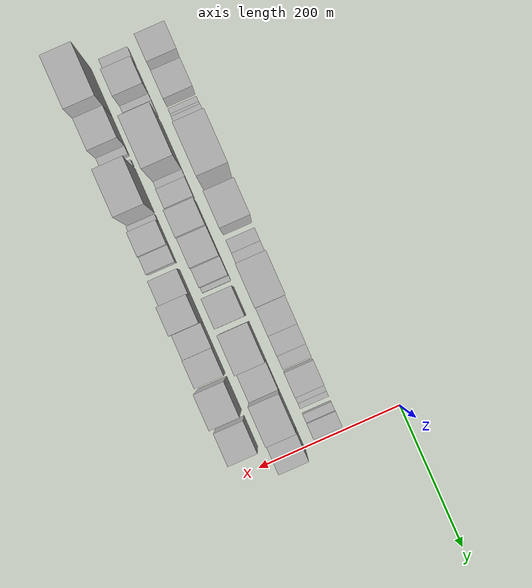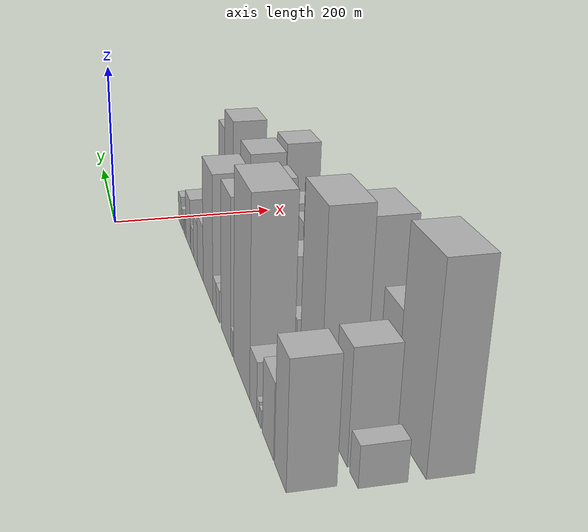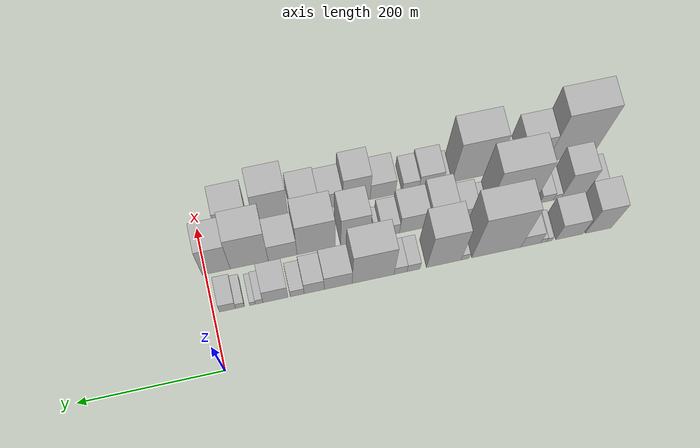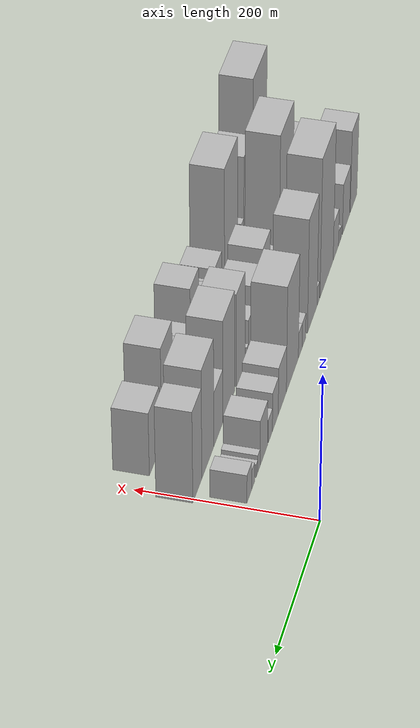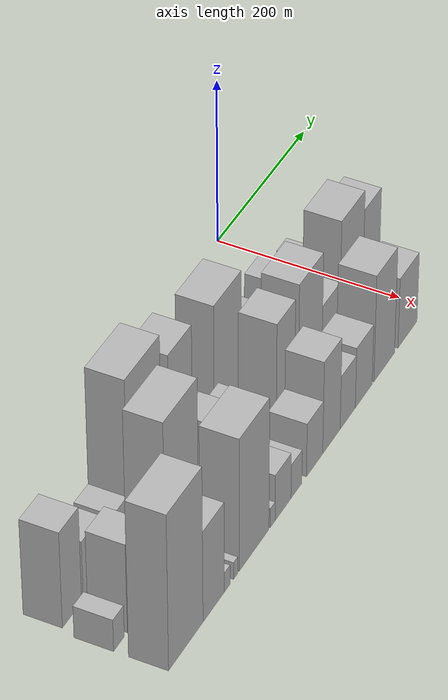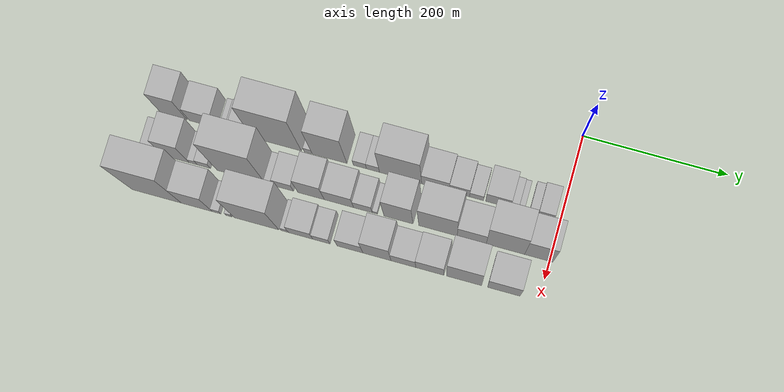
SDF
<sdf version="1.6">
 <world name="default">
  <model name="building_1">
   <static>1</static>
   <pose>100.0000 -535.5505 0 0.000000 0.000000 0.000000</pose>
   <link name="link">
    <pose>0 0 58.50 0 0 0</pose>
    <collision name="collision"><geometry><box><size>40.0000 36.8990 117.0000</size></box></geometry></collision>
    <visual name="visual">
     <cast_shadows>0</cast_shadows>
     <geometry><box><size>40.0000 36.8990 117.0000</size></box></geometry>
     <material>
      <script>
       <uri>model://HANNAS_wall/materials/scripts</uri>
       <uri>model://HANNAS_wall/materials/textures</uri>
       <name>vrc/HANNAS_wall</name>
      </script>
     </material>
    </visual>
   </link>
  </model>
  <model name="building_2">
   <static>1</static>
   <pose>100.0000 -494.7667 0 0.000000 0.000000 0.000000</pose>
   <link name="link">
    <pose>0 0 36.00 0 0 0</pose>
    <collision name="collision"><geometry><box><size>40.0000 38.6686 72.0000</size></box></geometry></collision>
    <visual name="visual">
     <cast_shadows>0</cast_shadows>
     <geometry><box><size>40.0000 38.6686 72.0000</size></box></geometry>
     <material>
      <script>
       <uri>model://HANNAS_wall/materials/scripts</uri>
       <uri>model://HANNAS_wall/materials/textures</uri>
       <name>vrc/HANNAS_wall</name>
      </script>
     </material>
    </visual>
   </link>
  </model>
  <model name="building_3">
   <static>1</static>
   <pose>100.0000 -466.4745 0 0.000000 0.000000 0.000000</pose>
   <link name="link">
    <pose>0 0 9.00 0 0 0</pose>
    <collision name="collision"><geometry><box><size>40.0000 7.9157 18.0000</size></box></geometry></collision>
    <visual name="visual">
     <cast_shadows>0</cast_shadows>
     <geometry><box><size>40.0000 7.9157 18.0000</size></box></geometry>
     <material>
      <script>
       <uri>model://HANNAS_wall/materials/scripts</uri>
       <uri>model://HANNAS_wall/materials/textures</uri>
       <name>vrc/HANNAS_wall</name>
      </script>
     </material>
    </visual>
   </link>
  </model>
  <model name="building_4">
   <static>1</static>
   <pose>100.0000 -458.2818 0 0.000000 0.000000 0.000000</pose>
   <link name="link">
    <pose>0 0 10.50 0 0 0</pose>
    <collision name="collision"><geometry><box><size>40.0000 8.4698 21.0000</size></box></geometry></collision>
    <visual name="visual">
     <cast_shadows>0</cast_shadows>
     <geometry><box><size>40.0000 8.4698 21.0000</size></box></geometry>
     <material>
      <script>
       <uri>model://HANNAS_wall/materials/scripts</uri>
       <uri>model://HANNAS_wall/materials/textures</uri>
       <name>vrc/HANNAS_wall</name>
      </script>
     </material>
    </visual>
   </link>
  </model>
  <model name="building_5">
   <static>1</static>
   <pose>100.0000 -440.0761 0 0.000000 0.000000 0.000000</pose>
   <link name="link">
    <pose>0 0 27.00 0 0 0</pose>
    <collision name="collision"><geometry><box><size>40.0000 27.9417 54.0000</size></box></geometry></collision>
    <visual name="visual">
     <cast_shadows>0</cast_shadows>
     <geometry><box><size>40.0000 27.9417 54.0000</size></box></geometry>
     <material>
      <script>
       <uri>model://HANNAS_wall/materials/scripts</uri>
       <uri>model://HANNAS_wall/materials/textures</uri>
       <name>vrc/HANNAS_wall</name>
      </script>
     </material>
    </visual>
   </link>
  </model>
  <model name="building_6">
   <static>1</static>
   <pose>100.0000 -391.7738 0 0.000000 0.000000 0.000000</pose>
   <link name="link">
    <pose>0 0 97.50 0 0 0</pose>
    <collision name="collision"><geometry><box><size>40.0000 68.6630 195.0000</size></box></geometry></collision>
    <visual name="visual">
     <cast_shadows>0</cast_shadows>
     <geometry><box><size>40.0000 68.6630 195.0000</size></box></geometry>
     <material>
      <script>
       <uri>model://HANNAS_wall/materials/scripts</uri>
       <uri>model://HANNAS_wall/materials/textures</uri>
       <name>vrc/HANNAS_wall</name>
      </script>
     </material>
    </visual>
   </link>
  </model>
  <model name="building_7">
   <static>1</static>
   <pose>100.0000 -347.8952 0 0.000000 0.000000 0.000000</pose>
   <link name="link">
    <pose>0 0 13.50 0 0 0</pose>
    <collision name="collision"><geometry><box><size>40.0000 11.0942 27.0000</size></box></geometry></collision>
    <visual name="visual">
     <cast_shadows>0</cast_shadows>
     <geometry><box><size>40.0000 11.0942 27.0000</size></box></geometry>
     <material>
      <script>
       <uri>model://HANNAS_wall/materials/scripts</uri>
       <uri>model://HANNAS_wall/materials/textures</uri>
       <name>vrc/HANNAS_wall</name>
      </script>
     </material>
    </visual>
   </link>
  </model>
  <model name="building_8">
   <static>1</static>
   <pose>100.0000 -318.2536 0 0.000000 0.000000 0.000000</pose>
   <link name="link">
    <pose>0 0 79.50 0 0 0</pose>
    <collision name="collision"><geometry><box><size>40.0000 48.1891 159.0000</size></box></geometry></collision>
    <visual name="visual">
     <cast_shadows>0</cast_shadows>
     <geometry><box><size>40.0000 48.1891 159.0000</size></box></geometry>
     <material>
      <script>
       <uri>model://HANNAS_wall/materials/scripts</uri>
       <uri>model://HANNAS_wall/materials/textures</uri>
       <name>vrc/HANNAS_wall</name>
      </script>
     </material>
    </visual>
   </link>
  </model>
  <model name="building_9">
   <static>1</static>
   <pose>100.0000 -276.0487 0 0.000000 0.000000 0.000000</pose>
   <link name="link">
    <pose>0 0 18.00 0 0 0</pose>
    <collision name="collision"><geometry><box><size>40.0000 18.2208 36.0000</size></box></geometry></collision>
    <visual name="visual">
     <cast_shadows>0</cast_shadows>
     <geometry><box><size>40.0000 18.2208 36.0000</size></box></geometry>
     <material>
      <script>
       <uri>model://HANNAS_wall/materials/scripts</uri>
       <uri>model://HANNAS_wall/materials/textures</uri>
       <name>vrc/HANNAS_wall</name>
      </script>
     </material>
    </visual>
   </link>
  </model>
  <model name="building_10">
   <static>1</static>
   <pose>100.0000 -257.8880 0 0.000000 0.000000 0.000000</pose>
   <link name="link">
    <pose>0 0 18.00 0 0 0</pose>
    <collision name="collision"><geometry><box><size>40.0000 18.1005 36.0000</size></box></geometry></collision>
    <visual name="visual">
     <cast_shadows>0</cast_shadows>
     <geometry><box><size>40.0000 18.1005 36.0000</size></box></geometry>
     <material>
      <script>
       <uri>model://HANNAS_wall/materials/scripts</uri>
       <uri>model://HANNAS_wall/materials/textures</uri>
       <name>vrc/HANNAS_wall</name>
      </script>
     </material>
    </visual>
   </link>
  </model>
  <model name="building_11">
   <static>1</static>
   <pose>100.0000 -219.7703 0 0.000000 0.000000 0.000000</pose>
   <link name="link">
    <pose>0 0 73.50 0 0 0</pose>
    <collision name="collision"><geometry><box><size>40.0000 58.1349 147.0000</size></box></geometry></collision>
    <visual name="visual">
     <cast_shadows>0</cast_shadows>
     <geometry><box><size>40.0000 58.1349 147.0000</size></box></geometry>
     <material>
      <script>
       <uri>model://HANNAS_wall/materials/scripts</uri>
       <uri>model://HANNAS_wall/materials/textures</uri>
       <name>vrc/HANNAS_wall</name>
      </script>
     </material>
    </visual>
   </link>
  </model>
  <model name="building_12">
   <static>1</static>
   <pose>100.0000 -171.3917 0 0.000000 0.000000 0.000000</pose>
   <link name="link">
    <pose>0 0 33.00 0 0 0</pose>
    <collision name="collision"><geometry><box><size>40.0000 38.6224 66.0000</size></box></geometry></collision>
    <visual name="visual">
     <cast_shadows>0</cast_shadows>
     <geometry><box><size>40.0000 38.6224 66.0000</size></box></geometry>
     <material>
      <script>
       <uri>model://HANNAS_wall/materials/scripts</uri>
       <uri>model://HANNAS_wall/materials/textures</uri>
       <name>vrc/HANNAS_wall</name>
      </script>
     </material>
    </visual>
   </link>
  </model>
  <model name="building_13">
   <static>1</static>
   <pose>100.0000 -138.2417 0 0.000000 0.000000 0.000000</pose>
   <link name="link">
    <pose>0 0 27.00 0 0 0</pose>
    <collision name="collision"><geometry><box><size>40.0000 27.6775 54.0000</size></box></geometry></collision>
    <visual name="visual">
     <cast_shadows>0</cast_shadows>
     <geometry><box><size>40.0000 27.6775 54.0000</size></box></geometry>
     <material>
      <script>
       <uri>model://HANNAS_wall/materials/scripts</uri>
       <uri>model://HANNAS_wall/materials/textures</uri>
       <name>vrc/HANNAS_wall</name>
      </script>
     </material>
    </visual>
   </link>
  </model>
  <model name="building_14">
   <static>1</static>
   <pose>100.0000 -114.8564 0 0.000000 0.000000 0.000000</pose>
   <link name="link">
    <pose>0 0 16.50 0 0 0</pose>
    <collision name="collision"><geometry><box><size>40.0000 19.0930 33.0000</size></box></geometry></collision>
    <visual name="visual">
     <cast_shadows>0</cast_shadows>
     <geometry><box><size>40.0000 19.0930 33.0000</size></box></geometry>
     <material>
      <script>
       <uri>model://HANNAS_wall/materials/scripts</uri>
       <uri>model://HANNAS_wall/materials/textures</uri>
       <name>vrc/HANNAS_wall</name>
      </script>
     </material>
    </visual>
   </link>
  </model>
  <model name="building_15">
   <static>1</static>
   <pose>100.0000 -85.0849 0 0.000000 0.000000 0.000000</pose>
   <link name="link">
    <pose>0 0 31.50 0 0 0</pose>
    <collision name="collision"><geometry><box><size>40.0000 34.4501 63.0000</size></box></geometry></collision>
    <visual name="visual">
     <cast_shadows>0</cast_shadows>
     <geometry><box><size>40.0000 34.4501 63.0000</size></box></geometry>
     <material>
      <script>
       <uri>model://HANNAS_wall/materials/scripts</uri>
       <uri>model://HANNAS_wall/materials/textures</uri>
       <name>vrc/HANNAS_wall</name>
      </script>
     </material>
    </visual>
   </link>
  </model>
  <model name="building_16">
   <static>1</static>
   <pose>100.0000 -62.6137 0 0.000000 0.000000 0.000000</pose>
   <link name="link">
    <pose>0 0 12.00 0 0 0</pose>
    <collision name="collision"><geometry><box><size>40.0000 10.4922 24.0000</size></box></geometry></collision>
    <visual name="visual">
     <cast_shadows>0</cast_shadows>
     <geometry><box><size>40.0000 10.4922 24.0000</size></box></geometry>
     <material>
      <script>
       <uri>model://HANNAS_wall/materials/scripts</uri>
       <uri>model://HANNAS_wall/materials/textures</uri>
       <name>vrc/HANNAS_wall</name>
      </script>
     </material>
    </visual>
   </link>
  </model>
  <model name="building_17">
   <static>1</static>
   <pose>100.0000 -53.4701 0 0.000000 0.000000 0.000000</pose>
   <link name="link">
    <pose>0 0 9.00 0 0 0</pose>
    <collision name="collision"><geometry><box><size>40.0000 7.7951 18.0000</size></box></geometry></collision>
    <visual name="visual">
     <cast_shadows>0</cast_shadows>
     <geometry><box><size>40.0000 7.7951 18.0000</size></box></geometry>
     <material>
      <script>
       <uri>model://HANNAS_wall/materials/scripts</uri>
       <uri>model://HANNAS_wall/materials/textures</uri>
       <name>vrc/HANNAS_wall</name>
      </script>
     </material>
    </visual>
   </link>
  </model>
  <model name="building_18">
   <static>1</static>
   <pose>100.0000 -36.5034 0 0.000000 0.000000 0.000000</pose>
   <link name="link">
    <pose>0 0 13.50 0 0 0</pose>
    <collision name="collision"><geometry><box><size>40.0000 12.1384 27.0000</size></box></geometry></collision>
    <visual name="visual">
     <cast_shadows>0</cast_shadows>
     <geometry><box><size>40.0000 12.1384 27.0000</size></box></geometry>
     <material>
      <script>
       <uri>model://HANNAS_wall/materials/scripts</uri>
       <uri>model://HANNAS_wall/materials/textures</uri>
       <name>vrc/HANNAS_wall</name>
      </script>
     </material>
    </visual>
   </link>
  </model>
  <model name="building_19">
   <static>1</static>
   <pose>100.0000 -19.3867 0 0.000000 0.000000 0.000000</pose>
   <link name="link">
    <pose>0 0 19.50 0 0 0</pose>
    <collision name="collision"><geometry><box><size>40.0000 22.0950 39.0000</size></box></geometry></collision>
    <visual name="visual">
     <cast_shadows>0</cast_shadows>
     <geometry><box><size>40.0000 22.0950 39.0000</size></box></geometry>
     <material>
      <script>
       <uri>model://HANNAS_wall/materials/scripts</uri>
       <uri>model://HANNAS_wall/materials/textures</uri>
       <name>vrc/HANNAS_wall</name>
      </script>
     </material>
    </visual>
   </link>
  </model>
  <model name="building_37">
   <static>1</static>
   <pose>155.0000 -549.6959 0 0.000000 0.000000 0.000000</pose>
   <link name="link">
    <pose>0 0 19.50 0 0 0</pose>
    <collision name="collision"><geometry><box><size>40.0000 20.6082 39.0000</size></box></geometry></collision>
    <visual name="visual">
     <cast_shadows>0</cast_shadows>
     <geometry><box><size>40.0000 20.6082 39.0000</size></box></geometry>
     <material>
      <script>
       <uri>model://HANNAS_wall/materials/scripts</uri>
       <uri>model://HANNAS_wall/materials/textures</uri>
       <name>vrc/HANNAS_wall</name>
      </script>
     </material>
    </visual>
   </link>
  </model>
  <model name="building_38">
   <static>1</static>
   <pose>155.0000 -515.3223 0 0.000000 0.000000 0.000000</pose>
   <link name="link">
    <pose>0 0 54.00 0 0 0</pose>
    <collision name="collision"><geometry><box><size>40.0000 36.1389 108.0000</size></box></geometry></collision>
    <visual name="visual">
     <cast_shadows>0</cast_shadows>
     <geometry><box><size>40.0000 36.1389 108.0000</size></box></geometry>
     <material>
      <script>
       <uri>model://HANNAS_wall/materials/scripts</uri>
       <uri>model://HANNAS_wall/materials/textures</uri>
       <name>vrc/HANNAS_wall</name>
      </script>
     </material>
    </visual>
   </link>
  </model>
  <model name="building_39">
   <static>1</static>
   <pose>155.0000 -491.7513 0 0.000000 0.000000 0.000000</pose>
   <link name="link">
    <pose>0 0 12.00 0 0 0</pose>
    <collision name="collision"><geometry><box><size>40.0000 11.0030 24.0000</size></box></geometry></collision>
    <visual name="visual">
     <cast_shadows>0</cast_shadows>
     <geometry><box><size>40.0000 11.0030 24.0000</size></box></geometry>
     <material>
      <script>
       <uri>model://HANNAS_wall/materials/scripts</uri>
       <uri>model://HANNAS_wall/materials/textures</uri>
       <name>vrc/HANNAS_wall</name>
      </script>
     </material>
    </visual>
   </link>
  </model>
  <model name="building_40">
   <static>1</static>
   <pose>155.0000 -476.9109 0 0.000000 0.000000 0.000000</pose>
   <link name="link">
    <pose>0 0 16.50 0 0 0</pose>
    <collision name="collision"><geometry><box><size>40.0000 18.6778 33.0000</size></box></geometry></collision>
    <visual name="visual">
     <cast_shadows>0</cast_shadows>
     <geometry><box><size>40.0000 18.6778 33.0000</size></box></geometry>
     <material>
      <script>
       <uri>model://HANNAS_wall/materials/scripts</uri>
       <uri>model://HANNAS_wall/materials/textures</uri>
       <name>vrc/HANNAS_wall</name>
      </script>
     </material>
    </visual>
   </link>
  </model>
  <model name="building_41">
   <static>1</static>
   <pose>155.0000 -424.9604 0 0.000000 0.000000 0.000000</pose>
   <link name="link">
    <pose>0 0 96.00 0 0 0</pose>
    <collision name="collision"><geometry><box><size>40.0000 67.2231 192.0000</size></box></geometry></collision>
    <visual name="visual">
     <cast_shadows>0</cast_shadows>
     <geometry><box><size>40.0000 67.2231 192.0000</size></box></geometry>
     <material>
      <script>
       <uri>model://HANNAS_wall/materials/scripts</uri>
       <uri>model://HANNAS_wall/materials/textures</uri>
       <name>vrc/HANNAS_wall</name>
      </script>
     </material>
    </visual>
   </link>
  </model>
  <model name="building_42">
   <static>1</static>
   <pose>155.0000 -385.1806 0 0.000000 0.000000 0.000000</pose>
   <link name="link">
    <pose>0 0 13.50 0 0 0</pose>
    <collision name="collision"><geometry><box><size>40.0000 12.3365 27.0000</size></box></geometry></collision>
    <visual name="visual">
     <cast_shadows>0</cast_shadows>
     <geometry><box><size>40.0000 12.3365 27.0000</size></box></geometry>
     <material>
      <script>
       <uri>model://HANNAS_wall/materials/scripts</uri>
       <uri>model://HANNAS_wall/materials/textures</uri>
       <name>vrc/HANNAS_wall</name>
      </script>
     </material>
    </visual>
   </link>
  </model>
  <model name="building_43">
   <static>1</static>
   <pose>155.0000 -365.5989 0 0.000000 0.000000 0.000000</pose>
   <link name="link">
    <pose>0 0 24.00 0 0 0</pose>
    <collision name="collision"><geometry><box><size>40.0000 26.8269 48.0000</size></box></geometry></collision>
    <visual name="visual">
     <cast_shadows>0</cast_shadows>
     <geometry><box><size>40.0000 26.8269 48.0000</size></box></geometry>
     <material>
      <script>
       <uri>model://HANNAS_wall/materials/scripts</uri>
       <uri>model://HANNAS_wall/materials/textures</uri>
       <name>vrc/HANNAS_wall</name>
      </script>
     </material>
    </visual>
   </link>
  </model>
  <model name="building_44">
   <static>1</static>
   <pose>155.0000 -327.8745 0 0.000000 0.000000 0.000000</pose>
   <link name="link">
    <pose>0 0 48.00 0 0 0</pose>
    <collision name="collision"><geometry><box><size>40.0000 36.6219 96.0000</size></box></geometry></collision>
    <visual name="visual">
     <cast_shadows>0</cast_shadows>
     <geometry><box><size>40.0000 36.6219 96.0000</size></box></geometry>
     <material>
      <script>
       <uri>model://HANNAS_wall/materials/scripts</uri>
       <uri>model://HANNAS_wall/materials/textures</uri>
       <name>vrc/HANNAS_wall</name>
      </script>
     </material>
    </visual>
   </link>
  </model>
  <model name="building_45">
   <static>1</static>
   <pose>155.0000 -289.3366 0 0.000000 0.000000 0.000000</pose>
   <link name="link">
    <pose>0 0 37.50 0 0 0</pose>
    <collision name="collision"><geometry><box><size>40.0000 40.4539 75.0000</size></box></geometry></collision>
    <visual name="visual">
     <cast_shadows>0</cast_shadows>
     <geometry><box><size>40.0000 40.4539 75.0000</size></box></geometry>
     <material>
      <script>
       <uri>model://HANNAS_wall/materials/scripts</uri>
       <uri>model://HANNAS_wall/materials/textures</uri>
       <name>vrc/HANNAS_wall</name>
      </script>
     </material>
    </visual>
   </link>
  </model>
  <model name="building_46">
   <static>1</static>
   <pose>155.0000 -256.2113 0 0.000000 0.000000 0.000000</pose>
   <link name="link">
    <pose>0 0 24.00 0 0 0</pose>
    <collision name="collision"><geometry><box><size>40.0000 25.7966 48.0000</size></box></geometry></collision>
    <visual name="visual">
     <cast_shadows>0</cast_shadows>
     <geometry><box><size>40.0000 25.7966 48.0000</size></box></geometry>
     <material>
      <script>
       <uri>model://HANNAS_wall/materials/scripts</uri>
       <uri>model://HANNAS_wall/materials/textures</uri>
       <name>vrc/HANNAS_wall</name>
      </script>
     </material>
    </visual>
   </link>
  </model>
  <model name="building_47">
   <static>1</static>
   <pose>155.0000 -239.7607 0 0.000000 0.000000 0.000000</pose>
   <link name="link">
    <pose>0 0 7.50 0 0 0</pose>
    <collision name="collision"><geometry><box><size>40.0000 7.1046 15.0000</size></box></geometry></collision>
    <visual name="visual">
     <cast_shadows>0</cast_shadows>
     <geometry><box><size>40.0000 7.1046 15.0000</size></box></geometry>
     <material>
      <script>
       <uri>model://HANNAS_wall/materials/scripts</uri>
       <uri>model://HANNAS_wall/materials/textures</uri>
       <name>vrc/HANNAS_wall</name>
      </script>
     </material>
    </visual>
   </link>
  </model>
  <model name="building_48">
   <static>1</static>
   <pose>155.0000 -207.1882 0 0.000000 0.000000 0.000000</pose>
   <link name="link">
    <pose>0 0 64.50 0 0 0</pose>
    <collision name="collision"><geometry><box><size>40.0000 40.0405 129.0000</size></box></geometry></collision>
    <visual name="visual">
     <cast_shadows>0</cast_shadows>
     <geometry><box><size>40.0000 40.0405 129.0000</size></box></geometry>
     <material>
      <script>
       <uri>model://HANNAS_wall/materials/scripts</uri>
       <uri>model://HANNAS_wall/materials/textures</uri>
       <name>vrc/HANNAS_wall</name>
      </script>
     </material>
    </visual>
   </link>
  </model>
  <model name="building_49">
   <static>1</static>
   <pose>155.0000 -152.7702 0 0.000000 0.000000 0.000000</pose>
   <link name="link">
    <pose>0 0 70.50 0 0 0</pose>
    <collision name="collision"><geometry><box><size>40.0000 52.7954 141.0000</size></box></geometry></collision>
    <visual name="visual">
     <cast_shadows>0</cast_shadows>
     <geometry><box><size>40.0000 52.7954 141.0000</size></box></geometry>
     <material>
      <script>
       <uri>model://HANNAS_wall/materials/scripts</uri>
       <uri>model://HANNAS_wall/materials/textures</uri>
       <name>vrc/HANNAS_wall</name>
      </script>
     </material>
    </visual>
   </link>
  </model>
  <model name="building_50">
   <static>1</static>
   <pose>155.0000 -106.4207 0 0.000000 0.000000 0.000000</pose>
   <link name="link">
    <pose>0 0 37.50 0 0 0</pose>
    <collision name="collision"><geometry><box><size>40.0000 39.9036 75.0000</size></box></geometry></collision>
    <visual name="visual">
     <cast_shadows>0</cast_shadows>
     <geometry><box><size>40.0000 39.9036 75.0000</size></box></geometry>
     <material>
      <script>
       <uri>model://HANNAS_wall/materials/scripts</uri>
       <uri>model://HANNAS_wall/materials/textures</uri>
       <name>vrc/HANNAS_wall</name>
      </script>
     </material>
    </visual>
   </link>
  </model>
  <model name="building_51">
   <static>1</static>
   <pose>155.0000 -60.1833 0 0.000000 0.000000 0.000000</pose>
   <link name="link">
    <pose>0 0 75.00 0 0 0</pose>
    <collision name="collision"><geometry><box><size>40.0000 52.5711 150.0000</size></box></geometry></collision>
    <visual name="visual">
     <cast_shadows>0</cast_shadows>
     <geometry><box><size>40.0000 52.5711 150.0000</size></box></geometry>
     <material>
      <script>
       <uri>model://HANNAS_wall/materials/scripts</uri>
       <uri>model://HANNAS_wall/materials/textures</uri>
       <name>vrc/HANNAS_wall</name>
      </script>
     </material>
    </visual>
   </link>
  </model>
  <model name="building_52">
   <static>1</static>
   <pose>155.0000 -14.5648 0 0.000000 0.000000 0.000000</pose>
   <link name="link">
    <pose>0 0 63.00 0 0 0</pose>
    <collision name="collision"><geometry><box><size>40.0000 38.6658 126.0000</size></box></geometry></collision>
    <visual name="visual">
     <cast_shadows>0</cast_shadows>
     <geometry><box><size>40.0000 38.6658 126.0000</size></box></geometry>
     <material>
      <script>
       <uri>model://HANNAS_wall/materials/scripts</uri>
       <uri>model://HANNAS_wall/materials/textures</uri>
       <name>vrc/HANNAS_wall</name>
      </script>
     </material>
    </visual>
   </link>
  </model>
  <model name="building_68">
   <static>1</static>
   <pose>210.0000 -525.7939 0 0.000000 0.000000 0.000000</pose>
   <link name="link">
    <pose>0 0 94.50 0 0 0</pose>
    <collision name="collision"><geometry><box><size>40.0000 68.4122 189.0000</size></box></geometry></collision>
    <visual name="visual">
     <cast_shadows>0</cast_shadows>
     <geometry><box><size>40.0000 68.4122 189.0000</size></box></geometry>
     <material>
      <script>
       <uri>model://HANNAS_wall/materials/scripts</uri>
       <uri>model://HANNAS_wall/materials/textures</uri>
       <name>vrc/HANNAS_wall</name>
      </script>
     </material>
    </visual>
   </link>
  </model>
  <model name="building_69">
   <static>1</static>
   <pose>210.0000 -470.1183 0 0.000000 0.000000 0.000000</pose>
   <link name="link">
    <pose>0 0 55.50 0 0 0</pose>
    <collision name="collision"><geometry><box><size>40.0000 42.9390 111.0000</size></box></geometry></collision>
    <visual name="visual">
     <cast_shadows>0</cast_shadows>
     <geometry><box><size>40.0000 42.9390 111.0000</size></box></geometry>
     <material>
      <script>
       <uri>model://HANNAS_wall/materials/scripts</uri>
       <uri>model://HANNAS_wall/materials/textures</uri>
       <name>vrc/HANNAS_wall</name>
      </script>
     </material>
    </visual>
   </link>
  </model>
  <model name="building_70">
   <static>1</static>
   <pose>210.0000 -442.7372 0 0.000000 0.000000 0.000000</pose>
   <link name="link">
    <pose>0 0 12.00 0 0 0</pose>
    <collision name="collision"><geometry><box><size>40.0000 11.8231 24.0000</size></box></geometry></collision>
    <visual name="visual">
     <cast_shadows>0</cast_shadows>
     <geometry><box><size>40.0000 11.8231 24.0000</size></box></geometry>
     <material>
      <script>
       <uri>model://HANNAS_wall/materials/scripts</uri>
       <uri>model://HANNAS_wall/materials/textures</uri>
       <name>vrc/HANNAS_wall</name>
      </script>
     </material>
    </visual>
   </link>
  </model>
  <model name="building_71">
   <static>1</static>
   <pose>210.0000 -425.5151 0 0.000000 0.000000 0.000000</pose>
   <link name="link">
    <pose>0 0 10.50 0 0 0</pose>
    <collision name="collision"><geometry><box><size>40.0000 8.6212 21.0000</size></box></geometry></collision>
    <visual name="visual">
     <cast_shadows>0</cast_shadows>
     <geometry><box><size>40.0000 8.6212 21.0000</size></box></geometry>
     <material>
      <script>
       <uri>model://HANNAS_wall/materials/scripts</uri>
       <uri>model://HANNAS_wall/materials/textures</uri>
       <name>vrc/HANNAS_wall</name>
      </script>
     </material>
    </visual>
   </link>
  </model>
  <model name="building_72">
   <static>1</static>
   <pose>210.0000 -387.2562 0 0.000000 0.000000 0.000000</pose>
   <link name="link">
    <pose>0 0 81.00 0 0 0</pose>
    <collision name="collision"><geometry><box><size>40.0000 61.8966 162.0000</size></box></geometry></collision>
    <visual name="visual">
     <cast_shadows>0</cast_shadows>
     <geometry><box><size>40.0000 61.8966 162.0000</size></box></geometry>
     <material>
      <script>
       <uri>model://HANNAS_wall/materials/scripts</uri>
       <uri>model://HANNAS_wall/materials/textures</uri>
       <name>vrc/HANNAS_wall</name>
      </script>
     </material>
    </visual>
   </link>
  </model>
  <model name="building_73">
   <static>1</static>
   <pose>210.0000 -348.2976 0 0.000000 0.000000 0.000000</pose>
   <link name="link">
    <pose>0 0 12.00 0 0 0</pose>
    <collision name="collision"><geometry><box><size>40.0000 10.0205 24.0000</size></box></geometry></collision>
    <visual name="visual">
     <cast_shadows>0</cast_shadows>
     <geometry><box><size>40.0000 10.0205 24.0000</size></box></geometry>
     <material>
      <script>
       <uri>model://HANNAS_wall/materials/scripts</uri>
       <uri>model://HANNAS_wall/materials/textures</uri>
       <name>vrc/HANNAS_wall</name>
      </script>
     </material>
    </visual>
   </link>
  </model>
  <model name="building_74">
   <static>1</static>
   <pose>210.0000 -326.3719 0 0.000000 0.000000 0.000000</pose>
   <link name="link">
    <pose>0 0 28.50 0 0 0</pose>
    <collision name="collision"><geometry><box><size>40.0000 33.8310 57.0000</size></box></geometry></collision>
    <visual name="visual">
     <cast_shadows>0</cast_shadows>
     <geometry><box><size>40.0000 33.8310 57.0000</size></box></geometry>
     <material>
      <script>
       <uri>model://HANNAS_wall/materials/scripts</uri>
       <uri>model://HANNAS_wall/materials/textures</uri>
       <name>vrc/HANNAS_wall</name>
      </script>
     </material>
    </visual>
   </link>
  </model>
  <model name="building_75">
   <static>1</static>
   <pose>210.0000 -297.6768 0 0.000000 0.000000 0.000000</pose>
   <link name="link">
    <pose>0 0 21.00 0 0 0</pose>
    <collision name="collision"><geometry><box><size>40.0000 23.5592 42.0000</size></box></geometry></collision>
    <visual name="visual">
     <cast_shadows>0</cast_shadows>
     <geometry><box><size>40.0000 23.5592 42.0000</size></box></geometry>
     <material>
      <script>
       <uri>model://HANNAS_wall/materials/scripts</uri>
       <uri>model://HANNAS_wall/materials/textures</uri>
       <name>vrc/HANNAS_wall</name>
      </script>
     </material>
    </visual>
   </link>
  </model>
  <model name="building_76">
   <static>1</static>
   <pose>210.0000 -258.1578 0 0.000000 0.000000 0.000000</pose>
   <link name="link">
    <pose>0 0 33.00 0 0 0</pose>
    <collision name="collision"><geometry><box><size>40.0000 35.4788 66.0000</size></box></geometry></collision>
    <visual name="visual">
     <cast_shadows>0</cast_shadows>
     <geometry><box><size>40.0000 35.4788 66.0000</size></box></geometry>
     <material>
      <script>
       <uri>model://HANNAS_wall/materials/scripts</uri>
       <uri>model://HANNAS_wall/materials/textures</uri>
       <name>vrc/HANNAS_wall</name>
      </script>
     </material>
    </visual>
   </link>
  </model>
  <model name="building_77">
   <static>1</static>
   <pose>210.0000 -221.1615 0 0.000000 0.000000 0.000000</pose>
   <link name="link">
    <pose>0 0 57.00 0 0 0</pose>
    <collision name="collision"><geometry><box><size>40.0000 38.5138 114.0000</size></box></geometry></collision>
    <visual name="visual">
     <cast_shadows>0</cast_shadows>
     <geometry><box><size>40.0000 38.5138 114.0000</size></box></geometry>
     <material>
      <script>
       <uri>model://HANNAS_wall/materials/scripts</uri>
       <uri>model://HANNAS_wall/materials/textures</uri>
       <name>vrc/HANNAS_wall</name>
      </script>
     </material>
    </visual>
   </link>
  </model>
  <model name="building_78">
   <static>1</static>
   <pose>210.0000 -184.8721 0 0.000000 0.000000 0.000000</pose>
   <link name="link">
    <pose>0 0 33.00 0 0 0</pose>
    <collision name="collision"><geometry><box><size>40.0000 34.0649 66.0000</size></box></geometry></collision>
    <visual name="visual">
     <cast_shadows>0</cast_shadows>
     <geometry><box><size>40.0000 34.0649 66.0000</size></box></geometry>
     <material>
      <script>
       <uri>model://HANNAS_wall/materials/scripts</uri>
       <uri>model://HANNAS_wall/materials/textures</uri>
       <name>vrc/HANNAS_wall</name>
      </script>
     </material>
    </visual>
   </link>
  </model>
  <model name="building_79">
   <static>1</static>
   <pose>210.0000 -148.7007 0 0.000000 0.000000 0.000000</pose>
   <link name="link">
    <pose>0 0 37.50 0 0 0</pose>
    <collision name="collision"><geometry><box><size>40.0000 38.2779 75.0000</size></box></geometry></collision>
    <visual name="visual">
     <cast_shadows>0</cast_shadows>
     <geometry><box><size>40.0000 38.2779 75.0000</size></box></geometry>
     <material>
      <script>
       <uri>model://HANNAS_wall/materials/scripts</uri>
       <uri>model://HANNAS_wall/materials/textures</uri>
       <name>vrc/HANNAS_wall</name>
      </script>
     </material>
    </visual>
   </link>
  </model>
  <model name="building_80">
   <static>1</static>
   <pose>210.0000 -101.7516 0 0.000000 0.000000 0.000000</pose>
   <link name="link">
    <pose>0 0 66.00 0 0 0</pose>
    <collision name="collision"><geometry><box><size>40.0000 47.6203 132.0000</size></box></geometry></collision>
    <visual name="visual">
     <cast_shadows>0</cast_shadows>
     <geometry><box><size>40.0000 47.6203 132.0000</size></box></geometry>
     <material>
      <script>
       <uri>model://HANNAS_wall/materials/scripts</uri>
       <uri>model://HANNAS_wall/materials/textures</uri>
       <name>vrc/HANNAS_wall</name>
      </script>
     </material>
    </visual>
   </link>
  </model>
  <model name="building_81">
   <static>1</static>
   <pose>210.0000 -47.6454 0 0.000000 0.000000 0.000000</pose>
   <link name="link">
    <pose>0 0 43.50 0 0 0</pose>
    <collision name="collision"><geometry><box><size>40.0000 44.5921 87.0000</size></box></geometry></collision>
    <visual name="visual">
     <cast_shadows>0</cast_shadows>
     <geometry><box><size>40.0000 44.5921 87.0000</size></box></geometry>
     <material>
      <script>
       <uri>model://HANNAS_wall/materials/scripts</uri>
       <uri>model://HANNAS_wall/materials/textures</uri>
       <name>vrc/HANNAS_wall</name>
      </script>
     </material>
    </visual>
   </link>
  </model>
 </world>
</sdf>
